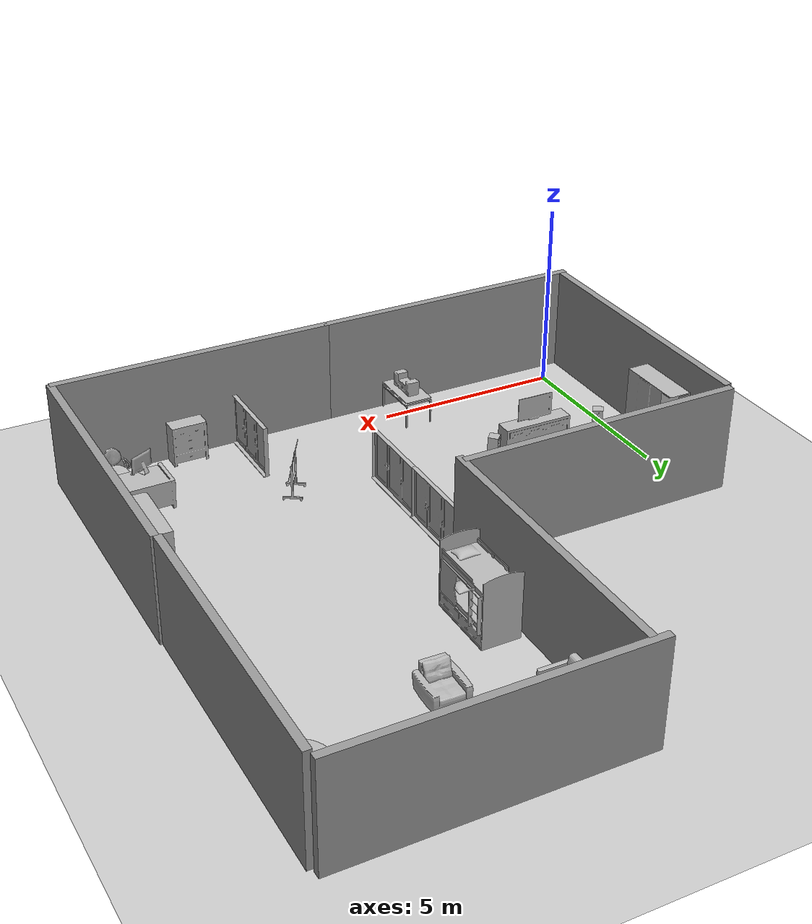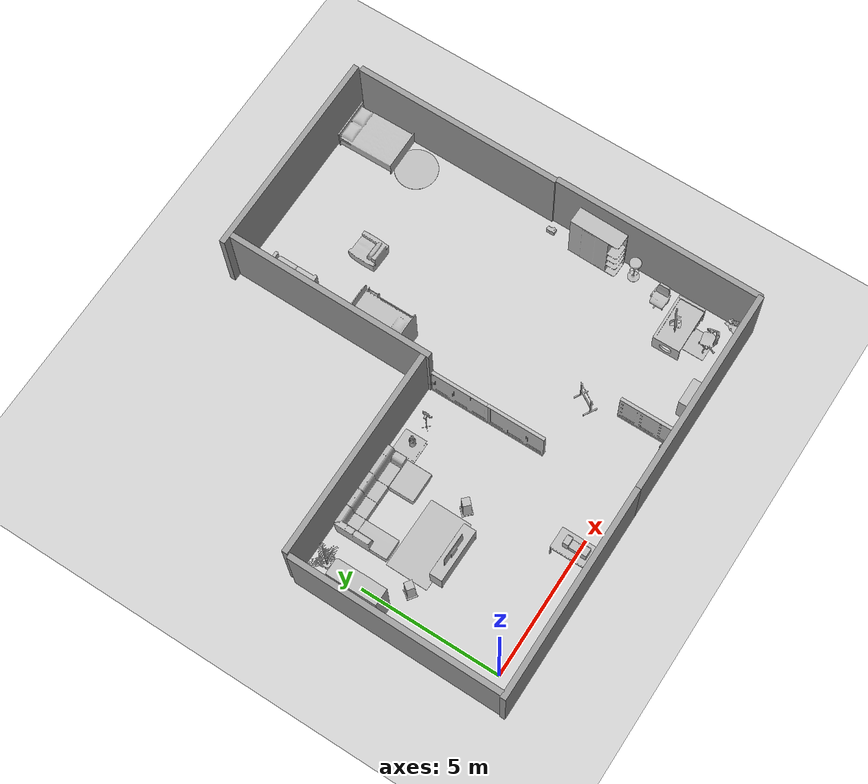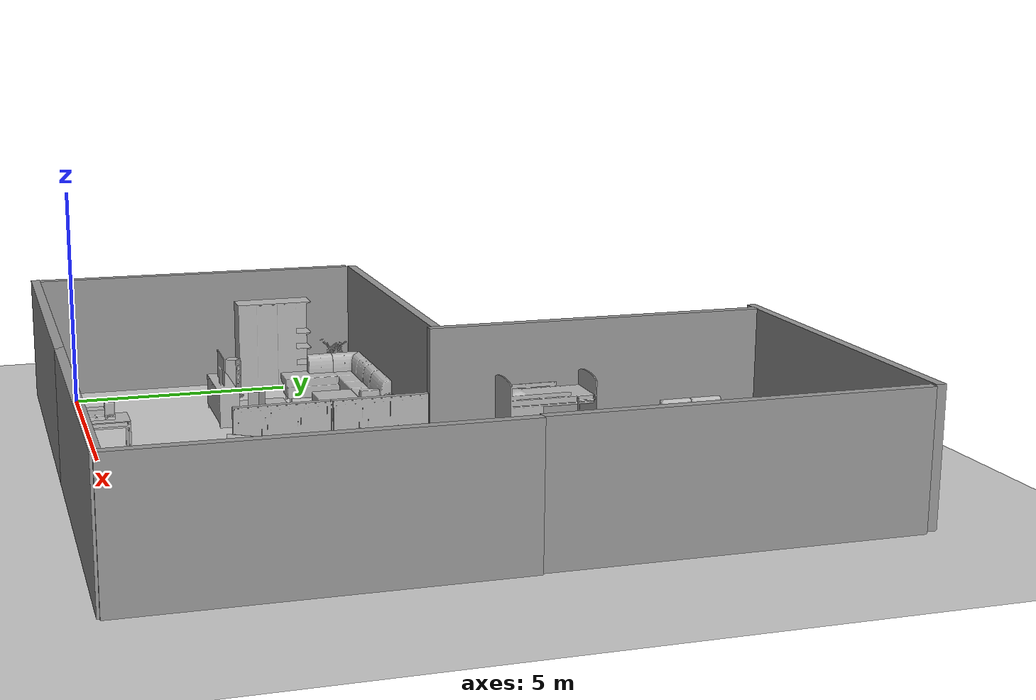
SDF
<sdf version="1.6">
 <world name="default">
  <light name="sun" type="directional">
   <pose>0 0 10 0 -0 0</pose>
   <diffuse>0.8 0.8 0.8 1</diffuse>
   <specular>0.2 0.2 0.2 1</specular>
   <attenuation>
    <range>1000</range>
    <constant>0.9</constant>
    <linear>0.01</linear>
    <quadratic>0.001</quadratic>
   </attenuation>
   <direction>-0.5 0.1 -0.9</direction>
  </light>
  <model name="ground_plane">
   <static>1</static>
   <link name="link">
    <collision name="collision">
     <geometry><plane><normal>0 0 1</normal><size>100 100</size></plane></geometry>
     <surface><friction><ode><mu>100</mu><mu2>50</mu2></ode></friction></surface>
    </collision>
    <visual name="visual">
     <cast_shadows>0</cast_shadows>
     <geometry><plane><normal>0 0 1</normal><size>100 100</size></plane></geometry>
     <material>
      <script><uri>file://media/materials/scripts/gazebo.material</uri><name>Gazebo/Grey</name></script>
     </material>
    </visual>
   </link>
  </model>
  <gravity>0 0 -9.8</gravity>
  <magnetic_field>6e-06 2.3e-05 -4.2e-05</magnetic_field>
  <atmosphere type="adiabatic"/>
  <physics name="default_physics" default="0" type="ode">
   <max_step_size>0.001</max_step_size>
   <real_time_factor>1</real_time_factor>
   <real_time_update_rate>1000</real_time_update_rate>
  </physics>
  <scene><ambient>0.4 0.4 0.4 1</ambient><background>0.7 0.7 0.7 1</background><shadows>1</shadows></scene>
  <audio><device>default</device></audio>
  <spherical_coordinates>
   <surface_model>EARTH_WGS84</surface_model>
   <latitude_deg>0</latitude_deg>
   <longitude_deg>0</longitude_deg>
   <elevation>0</elevation>
   <heading_deg>0</heading_deg>
  </spherical_coordinates>
  <model name="grey_wall_clone">
   <static>1</static>
   <link name="link">
    <pose>0 0 1.4 0 -0 0</pose>
    <collision name="collision"><geometry><box><size>7.5 0.2 2.8</size></box></geometry></collision>
    <visual name="visual">
     <cast_shadows>0</cast_shadows>
     <geometry><box><size>7.5 0.2 2.8</size></box></geometry>
     <material>
      <script>
       <uri>model://grey_wall/materials/scripts</uri>
       <uri>model://grey_wall/materials/textures</uri>
       <name>vrc/grey_wall</name>
      </script>
     </material>
    </visual>
   </link>
   <pose>10.1171 -0.755225 0 0 -0 0</pose>
  </model>
  <model name="grey_wall_clone_clone">
   <static>1</static>
   <link name="link">
    <pose>0 0 1.4 0 -0 0</pose>
    <collision name="collision"><geometry><box><size>7.5 0.2 2.8</size></box></geometry></collision>
    <visual name="visual">
     <cast_shadows>0</cast_shadows>
     <geometry><box><size>7.5 0.2 2.8</size></box></geometry>
     <material>
      <script>
       <uri>model://grey_wall/materials/scripts</uri>
       <uri>model://grey_wall/materials/textures</uri>
       <name>vrc/grey_wall</name>
      </script>
     </material>
    </visual>
   </link>
   <pose>2.9156 6.96492 0 0 -0 0</pose>
  </model>
  <model name="grey_wall_clone_clone_0">
   <static>1</static>
   <link name="link">
    <pose>0 0 1.4 0 -0 0</pose>
    <collision name="collision"><geometry><box><size>7.5 0.2 2.8</size></box></geometry></collision>
    <visual name="visual">
     <cast_shadows>0</cast_shadows>
     <geometry><box><size>7.5 0.2 2.8</size></box></geometry>
     <material>
      <script>
       <uri>model://grey_wall/materials/scripts</uri>
       <uri>model://grey_wall/materials/textures</uri>
       <name>vrc/grey_wall</name>
      </script>
     </material>
    </visual>
   </link>
   <pose>10.1088 14.3569 0 0 -0 0</pose>
  </model>
  <model name="grey_wall_clone_0">
   <static>1</static>
   <link name="link">
    <pose>0 0 1.4 0 -0 0</pose>
    <collision name="collision"><geometry><box><size>7.5 0.2 2.8</size></box></geometry></collision>
    <visual name="visual">
     <cast_shadows>0</cast_shadows>
     <geometry><box><size>7.5 0.2 2.8</size></box></geometry>
     <material>
      <script>
       <uri>model://grey_wall/materials/scripts</uri>
       <uri>model://grey_wall/materials/textures</uri>
       <name>vrc/grey_wall</name>
      </script>
     </material>
    </visual>
   </link>
   <pose>-0.860865 3.07377 0 0 -0 1.56395</pose>
  </model>
  <model name="grey_wall_clone_0_clone">
   <static>1</static>
   <link name="link">
    <pose>0 0 1.4 0 -0 0</pose>
    <collision name="collision"><geometry><box><size>7.5 0.2 2.8</size></box></geometry></collision>
    <visual name="visual">
     <cast_shadows>0</cast_shadows>
     <geometry><box><size>7.5 0.2 2.8</size></box></geometry>
     <material>
      <script>
       <uri>model://grey_wall/materials/scripts</uri>
       <uri>model://grey_wall/materials/textures</uri>
       <name>vrc/grey_wall</name>
      </script>
     </material>
    </visual>
   </link>
   <pose>6.70943 10.5323 0 0 -0 1.56395</pose>
  </model>
  <model name="grey_wall_clone_0_clone_1">
   <static>1</static>
   <link name="link">
    <pose>0 0 1.4 0 -0 0</pose>
    <collision name="collision"><geometry><box><size>7.5 0.2 2.8</size></box></geometry></collision>
    <visual name="visual">
     <cast_shadows>0</cast_shadows>
     <geometry><box><size>7.5 0.2 2.8</size></box></geometry>
     <material>
      <script>
       <uri>model://grey_wall/materials/scripts</uri>
       <uri>model://grey_wall/materials/textures</uri>
       <name>vrc/grey_wall</name>
      </script>
     </material>
    </visual>
   </link>
   <pose>13.8517 10.4355 0 0 -0 1.56395</pose>
  </model>
  <model name="620">
   <pose>0.032741 6.27882 0 0 -0 0</pose>
   <static>1</static>
   <link name="link">
    <collision name="collision"><geometry><box><size>0.999657 0.770188 2</size></box></geometry></collision>
    <visual name="visual"><geometry><mesh><uri>model://620/620.dae</uri></mesh></geometry></visual>
   </link>
  </model>
  <model name="42">
   <pose>-0.287038 4.83903 0 0 -0 0</pose>
   <static>1</static>
   <link name="link">
    <collision name="collision"><geometry><box><size>0.610353 1.8 2</size></box></geometry></collision>
    <visual name="visual"><geometry><mesh><uri>model://42/42.dae</uri></mesh></geometry></visual>
   </link>
  </model>
  <model name="430">
   <pose>12.5365 1.18815 0 0 0 -1.55755</pose>
   <static>1</static>
   <link name="link">
    <collision name="collision"><geometry><box><size>0.970014 1.72969 2</size></box></geometry></collision>
    <visual name="visual"><geometry><mesh><uri>model://430/430.dae</uri></mesh></geometry></visual>
   </link>
  </model>
  <model name="278">
   <pose>3.82557 3.64762 0 0 -0 2.37484</pose>
   <static>1</static>
   <link name="link">
    <collision name="collision"><geometry><box><size>0.366852 0.366852 2</size></box></geometry></collision>
    <visual name="visual"><geometry><mesh><uri>model://278/278.dae</uri></mesh></geometry></visual>
   </link>
  </model>
  <model name="258">
   <pose>4.68928 6.21707 0.282617 0 -0 0</pose>
   <static>1</static>
   <link name="link">
    <collision name="collision"><geometry><box><size>0.218804 0.218804 2</size></box></geometry></collision>
    <visual name="visual"><geometry><mesh><uri>model://258/258.dae</uri></mesh></geometry></visual>
   </link>
  </model>
  <model name="518">
   <pose>8.84427 2.39453 0 0 0 -0.555091</pose>
   <static>1</static>
   <link name="link">
    <collision name="collision"><geometry><box><size>0.5 0.7 2</size></box></geometry></collision>
    <visual name="visual"><geometry><mesh><uri>model://518/518.dae</uri></mesh></geometry></visual>
   </link>
  </model>
  <model name="189">
   <pose>12.3616 1.26201 1.00262 0 0 -1.1141</pose>
   <static>1</static>
   <link name="link">
    <collision name="collision"><geometry><box><size>0.359507 0.6495 2</size></box></geometry></collision>
    <visual name="visual"><geometry><mesh><uri>model://189/189.dae</uri></mesh></geometry></visual>
   </link>
  </model>
  <model name="320">
   <pose>13.4067 6.51633 0 0 -0 0</pose>
   <static>1</static>
   <link name="link">
    <collision name="collision"><geometry><box><size>0.18708 0.300509 2</size></box></geometry></collision>
    <visual name="visual"><geometry><mesh><uri>model://320/320.dae</uri></mesh></geometry></visual>
   </link>
  </model>
  <model name="211">
   <pose>9.11677 0.292143 0 0 -0 0</pose>
   <static>1</static>
   <link name="link">
    <collision name="collision"><geometry><box><size>0.175 2.1 2</size></box></geometry></collision>
    <visual name="visual"><geometry><mesh><uri>model://211/211.dae</uri></mesh></geometry></visual>
   </link>
  </model>
  <model name="218">
   <pose>4.4294 0.037355 0.73547 0 -0 0</pose>
   <static>1</static>
   <link name="link">
    <collision name="collision"><geometry><box><size>0.318 0.84 2</size></box></geometry></collision>
    <visual name="visual"><geometry><mesh><uri>model://218/218.dae</uri></mesh></geometry></visual>
   </link>
  </model>
  <model name="335">
   <pose>12.6576 0.137843 0 0 -0 1.798</pose>
   <static>1</static>
   <link name="link">
    <collision name="collision"><geometry><box><size>0.599914 0.62 2</size></box></geometry></collision>
    <visual name="visual"><geometry><mesh><uri>model://335/335.dae</uri></mesh></geometry></visual>
   </link>
  </model>
  <model name="153">
   <pose>12.5578 0.505161 0 0 -0 0</pose>
   <static>1</static>
   <link name="link">
    <collision name="collision"><geometry><box><size>0.86 1 0</size></box></geometry></collision>
    <visual name="visual"><geometry><mesh><uri>model://153/153.dae</uri></mesh></geometry></visual>
   </link>
  </model>
  <model name="130">
   <pose>13.5786 -0.210847 0 0 -0 0</pose>
   <static>1</static>
   <link name="link">
    <collision name="collision"><geometry><box><size>0.51716 0.566834 2</size></box></geometry></collision>
    <visual name="visual"><geometry><mesh><uri>model://130/130.dae</uri></mesh></geometry></visual>
   </link>
  </model>
  <model name="106">
   <pose>13.0666 2.20321 0 0 -0 0</pose>
   <static>1</static>
   <link name="link">
    <collision name="collision"><geometry><box><size>0.550393 0.596196 2</size></box></geometry></collision>
    <visual name="visual"><geometry><mesh><uri>model://106/106.dae</uri></mesh></geometry></visual>
   </link>
  </model>
  <model name="42_0">
   <pose>13.4273 4.80867 0 0 -0 3.12082</pose>
   <static>1</static>
   <link name="link">
    <collision name="collision"><geometry><box><size>0.610353 1.8 2</size></box></geometry></collision>
    <visual name="visual"><geometry><mesh><uri>model://42/42.dae</uri></mesh></geometry></visual>
   </link>
  </model>
  <model name="464">
   <pose>10.5688 -0.385047 0 0 -0 1.57369</pose>
   <static>1</static>
   <link name="link">
    <collision name="collision"><geometry><box><size>0.45997 0.94 2</size></box></geometry></collision>
    <visual name="visual"><geometry><mesh><uri>model://464/464.dae</uri></mesh></geometry></visual>
   </link>
  </model>
  <model name="258_0">
   <pose>8.80057 -0.458906 0 0 -0 0</pose>
   <static>1</static>
   <link name="link">
    <collision name="collision"><geometry><box><size>0.218804 0.218804 2</size></box></geometry></collision>
    <visual name="visual"><geometry><mesh><uri>model://258/258.dae</uri></mesh></geometry></visual>
   </link>
  </model>
  <model name="238">
   <pose>2.28468 4.0308 0 0 -0 1.5613</pose>
   <static>1</static>
   <link name="link">
    <collision name="collision"><geometry><box><size>1.5 2.5 0</size></box></geometry></collision>
    <visual name="visual"><geometry><mesh><uri>model://238/238.dae</uri></mesh></geometry></visual>
   </link>
  </model>
  <model name="57">
   <pose>7.24536 12.6941 0 0 -0 0</pose>
   <static>1</static>
   <link name="link">
    <collision name="collision"><geometry><box><size>0.969847 1.65014 2</size></box></geometry></collision>
    <visual name="visual"><geometry><mesh><uri>model://57/57.dae</uri></mesh></geometry></visual>
   </link>
  </model>
  <model name="167">
   <pose>2.56291 5.71296 0 0 0 -1.5698</pose>
   <static>1</static>
   <link name="link">
    <collision name="collision"><geometry><box><size>1.93296 3.03706 2</size></box></geometry></collision>
    <visual name="visual"><geometry><mesh><uri>model://167/167.dae</uri></mesh></geometry></visual>
   </link>
  </model>
  <model name="403_clone">
   <pose>13.0403 13.1728 0 0 0 -1.56168</pose>
   <static>1</static>
   <link name="link">
    <collision name="collision"><geometry><box><size>2.07001 1.46005 2</size></box></geometry></collision>
    <visual name="visual"><geometry><mesh><uri>model://403/403.dae</uri></mesh></geometry></visual>
   </link>
  </model>
  <model name="s__1647">
   <pose>12.932 11.5249 0 0 -0 0</pose>
   <static>1</static>
   <link name="link">
    <collision name="collision"><geometry><box><size>1.5 1.5 0</size></box></geometry></collision>
    <visual name="visual"><geometry><mesh><uri>model://s__1647/s__1647.dae</uri></mesh></geometry></visual>
   </link>
  </model>
  <model name="s__645">
   <pose>9.46018 11.0856 0 0 -0 1.54192</pose>
   <static>1</static>
   <link name="link">
    <collision name="collision"><geometry><box><size>1 0.95 2</size></box></geometry></collision>
    <visual name="visual"><geometry><mesh><uri>model://s__645/s__645.dae</uri></mesh></geometry></visual>
   </link>
  </model>
  <model name="s__563_clone">
   <pose>2.30436 3.16169 0 0 -0 1.55896</pose>
   <static>1</static>
   <link name="link">
    <collision name="collision"><geometry><box><size>0.48 1.90001 2</size></box></geometry></collision>
    <visual name="visual"><geometry><mesh><uri>model://s__563/s__563.dae</uri></mesh></geometry></visual>
   </link>
  </model>
  <model name="226">
   <pose>5.47625 6.22001 0 0 -0 0</pose>
   <static>1</static>
   <link name="link">
    <collision name="collision"><geometry><box><size>0.229955 0.369998 2</size></box></geometry></collision>
    <visual name="visual"><geometry><mesh><uri>model://226/226.dae</uri></mesh></geometry></visual>
   </link>
  </model>
  <model name="542">
   <pose>4.60937 6.27624 0 0 -0 0</pose>
   <static>1</static>
   <link name="link">
    <collision name="collision"><geometry><box><size>0.79 0.79 2</size></box></geometry></collision>
    <visual name="visual"><geometry><mesh><uri>model://542/542.dae</uri></mesh></geometry></visual>
   </link>
  </model>
  <model name="270">
   <pose>7.5055 9.12663 0 0 -0 0</pose>
   <static>1</static>
   <link name="link">
    <collision name="collision"><geometry><box><size>1.10097 1.9 2</size></box></geometry></collision>
    <visual name="visual"><geometry><mesh><uri>model://270/270.dae</uri></mesh></geometry></visual>
   </link>
  </model>
  <model name="506">
   <pose>4.42786 0.06103 0 0 -0 0</pose>
   <static>1</static>
   <link name="link">
    <collision name="collision"><geometry><box><size>0.75 1.40043 2</size></box></geometry></collision>
    <visual name="visual"><geometry><mesh><uri>model://506/506.dae</uri></mesh></geometry></visual>
   </link>
  </model>
  <model name="88">
   <pose>13.479 3.40784 0 0 -0 0</pose>
   <static>1</static>
   <link name="link">
    <collision name="collision"><geometry><box><size>0.40365 0.40365 2</size></box></geometry></collision>
    <visual name="visual"><geometry><mesh><uri>model://88/88.dae</uri></mesh></geometry></visual>
   </link>
  </model>
  <model name="grey_wall_clone_clone_1">
   <static>1</static>
   <link name="link">
    <pose>0 0 1.4 0 -0 0</pose>
    <collision name="collision"><geometry><box><size>7.5 0.2 2.8</size></box></geometry></collision>
    <visual name="visual">
     <cast_shadows>0</cast_shadows>
     <geometry><box><size>7.5 0.2 2.8</size></box></geometry>
     <material>
      <script>
       <uri>model://grey_wall/materials/scripts</uri>
       <uri>model://grey_wall/materials/textures</uri>
       <name>vrc/grey_wall</name>
      </script>
     </material>
    </visual>
   </link>
   <pose>2.72658 -0.755323 0 0 -0 0</pose>
  </model>
  <model name="grey_wall_clone_0_clone_1_clone">
   <static>1</static>
   <link name="link">
    <pose>0 0 1.4 0 -0 0</pose>
    <collision name="collision"><geometry><box><size>7.5 0.2 2.8</size></box></geometry></collision>
    <visual name="visual">
     <cast_shadows>0</cast_shadows>
     <geometry><box><size>7.5 0.2 2.8</size></box></geometry>
     <material>
      <script>
       <uri>model://grey_wall/materials/scripts</uri>
       <uri>model://grey_wall/materials/textures</uri>
       <name>vrc/grey_wall</name>
      </script>
     </material>
    </visual>
   </link>
   <pose>13.8599 2.94943 0 0 -0 1.56395</pose>
  </model>
  <model name="278_clone">
   <pose>0.68904 3.66193 0 0 -0 0.94466</pose>
   <static>1</static>
   <link name="link">
    <collision name="collision"><geometry><box><size>0.366852 0.366852 2</size></box></geometry></collision>
    <visual name="visual"><geometry><mesh><uri>model://278/278.dae</uri></mesh></geometry></visual>
   </link>
  </model>
  <model name="112">
   <pose>2.28792 3.11163 0.774311 0 -0 1.54627</pose>
   <static>1</static>
   <link name="link">
    <collision name="collision"><geometry><box><size>0.099688 0.99 2</size></box></geometry></collision>
    <visual name="visual"><geometry><mesh><uri>model://112/112.dae</uri></mesh></geometry></visual>
   </link>
  </model>
  <model name="211_0">
   <pose>6.69424 5.72044 0 0 -0 0</pose>
   <static>1</static>
   <link name="link">
    <collision name="collision"><geometry><box><size>0.175 2.1 2</size></box></geometry></collision>
    <visual name="visual"><geometry><mesh><uri>model://211/211.dae</uri></mesh></geometry></visual>
   </link>
  </model>
  <model name="211_0_clone">
   <pose>6.70229 3.66387 0 0 -0 0</pose>
   <static>1</static>
   <link name="link">
    <collision name="collision"><geometry><box><size>0.175 2.1 2</size></box></geometry></collision>
    <visual name="visual"><geometry><mesh><uri>model://211/211.dae</uri></mesh></geometry></visual>
   </link>
  </model>
 </world>
</sdf>
